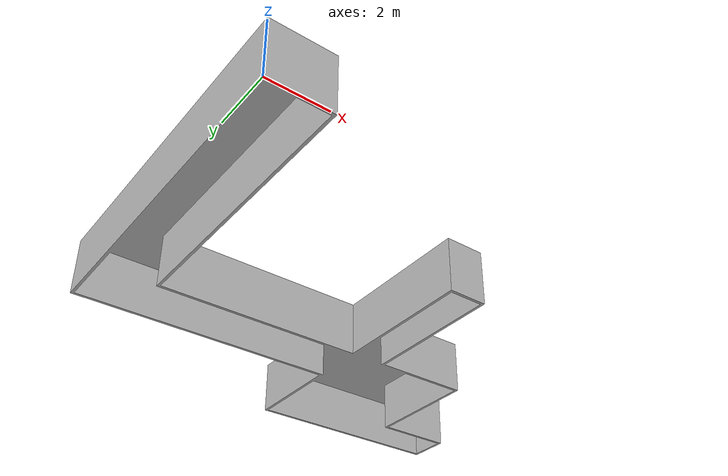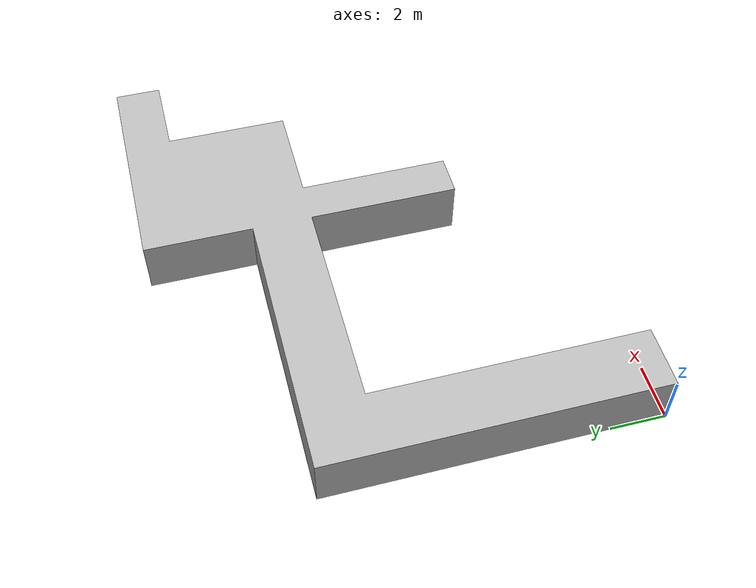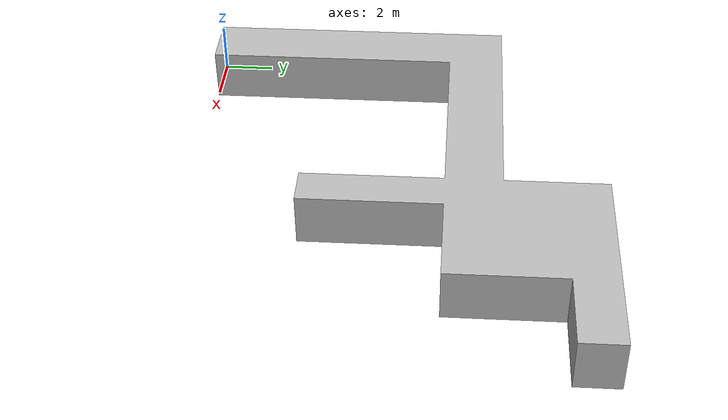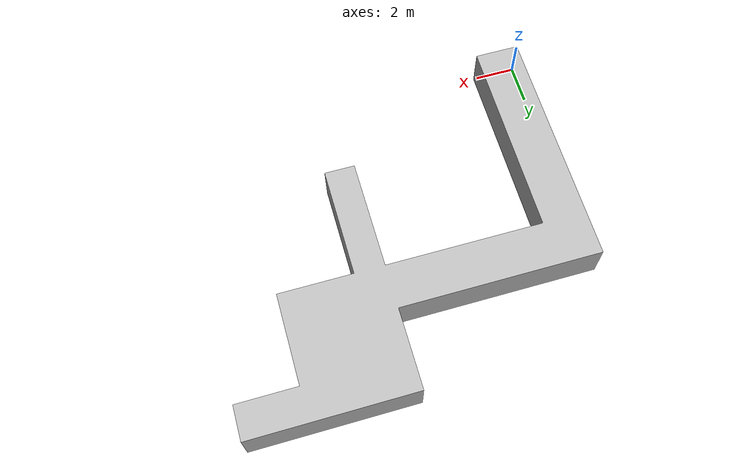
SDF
<?xml version='1.0'?>
<sdf version="1.6">

  <model name="floor5">
    <static>true</static>

    <link name="link">
      <pose>0 0 0 0 0 0</pose>
      <collision name="collision">
        <geometry>
          <mesh>
            <uri>model://floor5/meshes/floor5.dae</uri>
          </mesh>
        </geometry>
      </collision>

      <visual name="visual">
        <geometry>
          <mesh>
            <uri>model://floor5/meshes/floor5.dae</uri>
          </mesh>
        </geometry>
      </visual>
    </link>

  </model>
</sdf>
